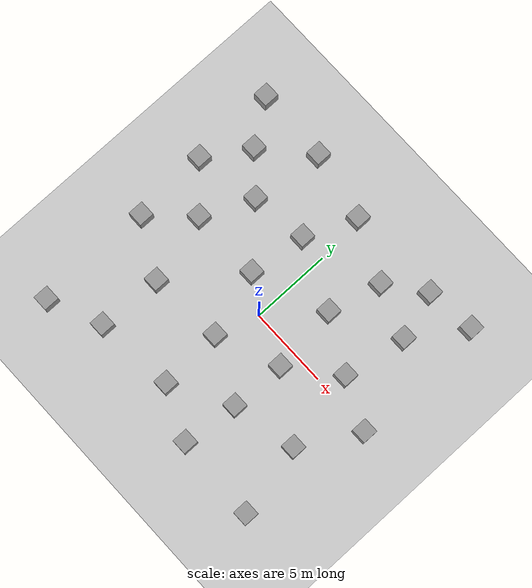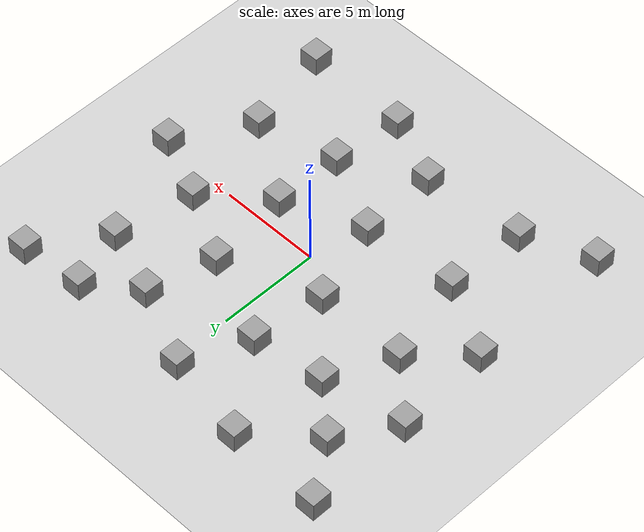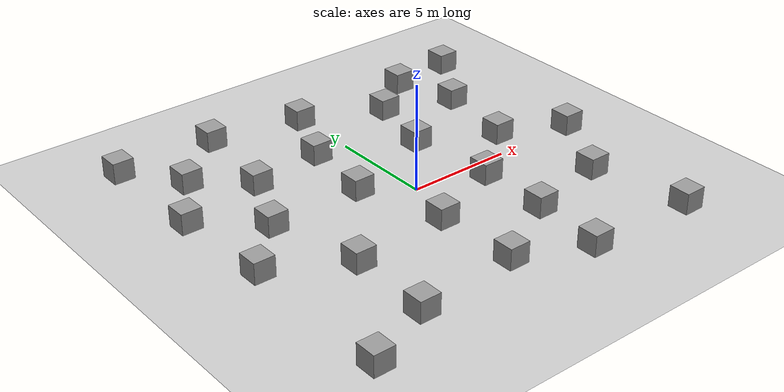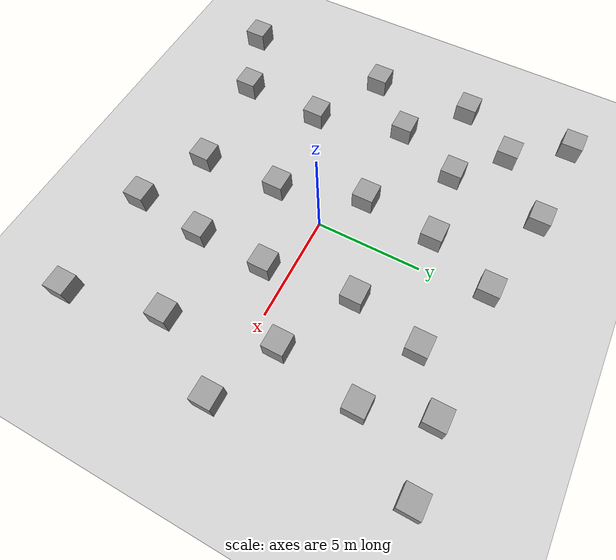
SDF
<sdf version="1.7">
 <world name="default">
  <light name="sun" type="directional">
   <pose>0 0 10 0 -0 0</pose>
   <diffuse>0.8 0.8 0.8 1</diffuse>
   <specular>0.2 0.2 0.2 1</specular>
   <attenuation>
    <range>1000</range>
    <constant>0.9</constant>
    <linear>0.01</linear>
    <quadratic>0.001</quadratic>
   </attenuation>
   <direction>-0.5 0.1 -0.9</direction>
   <spot><inner_angle>0</inner_angle><outer_angle>0</outer_angle><falloff>0</falloff></spot>
  </light>
  <model name="ground_plane">
   <static>1</static>
   <link name="link">
    <collision name="collision">
     <geometry><plane><normal>0 0 1</normal><size>100 100</size></plane></geometry>
     <surface>
      <contact><collide_bitmask>65535</collide_bitmask></contact>
      <friction><ode><mu>100</mu><mu2>50</mu2></ode></friction>
     </surface>
    </collision>
    <visual name="visual">
     <cast_shadows>0</cast_shadows>
     <geometry><plane><normal>0 0 1</normal><size>100 100</size></plane></geometry>
     <material>
      <script><uri>file://media/materials/scripts/gazebo.material</uri><name>Gazebo/Grey</name></script>
     </material>
    </visual>
   </link>
  </model>
  <gravity>0 0 -9.8</gravity>
  <magnetic_field>6e-06 2.3e-05 -4.2e-05</magnetic_field>
  <atmosphere type="adiabatic"/>
  <physics type="ode">
   <max_step_size>0.001</max_step_size>
   <real_time_factor>1</real_time_factor>
   <real_time_update_rate>1000</real_time_update_rate>
  </physics>
  <scene><ambient>0.4 0.4 0.4 1</ambient><background>0.7 0.7 0.7 1</background><shadows>1</shadows></scene>
  <spherical_coordinates>
   <surface_model>EARTH_WGS84</surface_model>
   <latitude_deg>0</latitude_deg>
   <longitude_deg>0</longitude_deg>
   <elevation>0</elevation>
   <heading_deg>0</heading_deg>
  </spherical_coordinates>
  <model name="Simple_Rectangle_Env_10F">
   <link name="link_0">
    <inertial>
     <mass>1</mass>
     <inertia>
      <ixx>0.166667</ixx>
      <ixy>0</ixy>
      <ixz>0</ixz>
      <iyy>0.166667</iyy>
      <iyz>0</iyz>
      <izz>0.166667</izz>
     </inertia>
    </inertial>
    <pose>-1.68521 0.387679 0 0 -0 0</pose>
    <visual name="visual">
     <geometry><box><size>1 1 1</size></box></geometry>
     <material>
      <lighting>1</lighting>
      <script><uri>file://media/materials/scripts/gazebo.material</uri><name>Gazebo/Grey</name></script>
      <shader type="pixel"/>
     </material>
    </visual>
    <collision name="collision">
     <geometry><box><size>1 1 1</size></box></geometry>
     <surface>
      <friction>
       <ode><mu>1</mu><mu2>1</mu2><fdir1>0 0 0</fdir1><slip1>0</slip1><slip2>0</slip2></ode>
       <torsional>
        <coefficient>1</coefficient>
        <patch_radius>0</patch_radius>
        <surface_radius>0</surface_radius>
        <use_patch_radius>1</use_patch_radius>
        <ode><slip>0</slip></ode>
       </torsional>
      </friction>
      <bounce><restitution_coefficient>0</restitution_coefficient><threshold>1e+06</threshold></bounce>
      <contact>
       <collide_without_contact>0</collide_without_contact>
       <collide_without_contact_bitmask>1</collide_without_contact_bitmask>
       <collide_bitmask>1</collide_bitmask>
       <ode>
        <soft_cfm>0</soft_cfm>
        <soft_erp>0.2</soft_erp>
        <kp>1e+13</kp>
        <kd>1</kd>
        <max_vel>0.01</max_vel>
        <min_depth>0</min_depth>
       </ode>
       <bullet>
        <split_impulse>1</split_impulse>
        <split_impulse_penetration_threshold>-0.01</split_impulse_penetration_threshold>
        <soft_cfm>0</soft_cfm>
        <soft_erp>0.2</soft_erp>
        <kp>1e+13</kp>
        <kd>1</kd>
       </bullet>
      </contact>
     </surface>
    </collision>
   </link>
   <link name="link_1">
    <inertial>
     <mass>1</mass>
     <inertia>
      <ixx>0.166667</ixx>
      <ixy>0</ixy>
      <ixz>0</ixz>
      <iyy>0.166667</iyy>
      <iyz>0</iyz>
      <izz>0.166667</izz>
     </inertia>
    </inertial>
    <pose>-0.395431 -3.63797 0 0 -0 0</pose>
    <visual name="visual">
     <geometry><box><size>1 1 1</size></box></geometry>
     <material>
      <lighting>1</lighting>
      <script><uri>file://media/materials/scripts/gazebo.material</uri><name>Gazebo/Grey</name></script>
      <shader type="pixel"/>
     </material>
    </visual>
    <collision name="collision">
     <geometry><box><size>1 1 1</size></box></geometry>
     <surface>
      <friction>
       <ode><mu>1</mu><mu2>1</mu2><fdir1>0 0 0</fdir1><slip1>0</slip1><slip2>0</slip2></ode>
       <torsional>
        <coefficient>1</coefficient>
        <patch_radius>0</patch_radius>
        <surface_radius>0</surface_radius>
        <use_patch_radius>1</use_patch_radius>
        <ode><slip>0</slip></ode>
       </torsional>
      </friction>
      <bounce><restitution_coefficient>0</restitution_coefficient><threshold>1e+06</threshold></bounce>
      <contact>
       <collide_without_contact>0</collide_without_contact>
       <collide_without_contact_bitmask>1</collide_without_contact_bitmask>
       <collide_bitmask>1</collide_bitmask>
       <ode>
        <soft_cfm>0</soft_cfm>
        <soft_erp>0.2</soft_erp>
        <kp>1e+13</kp>
        <kd>1</kd>
        <max_vel>0.01</max_vel>
        <min_depth>0</min_depth>
       </ode>
       <bullet>
        <split_impulse>1</split_impulse>
        <split_impulse_penetration_threshold>-0.01</split_impulse_penetration_threshold>
        <soft_cfm>0</soft_cfm>
        <soft_erp>0.2</soft_erp>
        <kp>1e+13</kp>
        <kd>1</kd>
       </bullet>
      </contact>
     </surface>
    </collision>
   </link>
   <link name="link_11">
    <inertial>
     <mass>1</mass>
     <inertia>
      <ixx>0.166667</ixx>
      <ixy>0</ixy>
      <ixz>0</ixz>
      <iyy>0.166667</iyy>
      <iyz>0</iyz>
      <izz>0.166667</izz>
     </inertia>
    </inertial>
    <pose>-6.17343 0.339996 0 0 -0 0</pose>
    <visual name="visual">
     <geometry><box><size>1 1 1</size></box></geometry>
     <material>
      <lighting>1</lighting>
      <script><uri>file://media/materials/scripts/gazebo.material</uri><name>Gazebo/Grey</name></script>
      <shader type="pixel"/>
     </material>
    </visual>
    <collision name="collision">
     <geometry><box><size>1 1 1</size></box></geometry>
     <surface>
      <friction>
       <ode><mu>1</mu><mu2>1</mu2><fdir1>0 0 0</fdir1><slip1>0</slip1><slip2>0</slip2></ode>
       <torsional>
        <coefficient>1</coefficient>
        <patch_radius>0</patch_radius>
        <surface_radius>0</surface_radius>
        <use_patch_radius>1</use_patch_radius>
        <ode><slip>0</slip></ode>
       </torsional>
      </friction>
      <bounce><restitution_coefficient>0</restitution_coefficient><threshold>1e+06</threshold></bounce>
      <contact>
       <collide_without_contact>0</collide_without_contact>
       <collide_without_contact_bitmask>1</collide_without_contact_bitmask>
       <collide_bitmask>1</collide_bitmask>
       <ode>
        <soft_cfm>0</soft_cfm>
        <soft_erp>0.2</soft_erp>
        <kp>1e+13</kp>
        <kd>1</kd>
        <max_vel>0.01</max_vel>
        <min_depth>0</min_depth>
       </ode>
       <bullet>
        <split_impulse>1</split_impulse>
        <split_impulse_penetration_threshold>-0.01</split_impulse_penetration_threshold>
        <soft_cfm>0</soft_cfm>
        <soft_erp>0.2</soft_erp>
        <kp>1e+13</kp>
        <kd>1</kd>
       </bullet>
      </contact>
     </surface>
    </collision>
   </link>
   <link name="link_13">
    <inertial>
     <mass>1</mass>
     <inertia>
      <ixx>0.166667</ixx>
      <ixy>0</ixy>
      <ixz>0</ixz>
      <iyy>0.166667</iyy>
      <iyz>0</iyz>
      <izz>0.166667</izz>
     </inertia>
    </inertial>
    <pose>0.104391 7.11502 0 0 -0 0</pose>
    <visual name="visual">
     <geometry><box><size>1 1 1</size></box></geometry>
     <material>
      <lighting>1</lighting>
      <script><uri>file://media/materials/scripts/gazebo.material</uri><name>Gazebo/Grey</name></script>
      <shader type="pixel"/>
     </material>
    </visual>
    <collision name="collision">
     <geometry><box><size>1 1 1</size></box></geometry>
     <surface>
      <friction>
       <ode><mu>1</mu><mu2>1</mu2><fdir1>0 0 0</fdir1><slip1>0</slip1><slip2>0</slip2></ode>
       <torsional>
        <coefficient>1</coefficient>
        <patch_radius>0</patch_radius>
        <surface_radius>0</surface_radius>
        <use_patch_radius>1</use_patch_radius>
        <ode><slip>0</slip></ode>
       </torsional>
      </friction>
      <bounce><restitution_coefficient>0</restitution_coefficient><threshold>1e+06</threshold></bounce>
      <contact>
       <collide_without_contact>0</collide_without_contact>
       <collide_without_contact_bitmask>1</collide_without_contact_bitmask>
       <collide_bitmask>1</collide_bitmask>
       <ode>
        <soft_cfm>0</soft_cfm>
        <soft_erp>0.2</soft_erp>
        <kp>1e+13</kp>
        <kd>1</kd>
        <max_vel>0.01</max_vel>
        <min_depth>0</min_depth>
       </ode>
       <bullet>
        <split_impulse>1</split_impulse>
        <split_impulse_penetration_threshold>-0.01</split_impulse_penetration_threshold>
        <soft_cfm>0</soft_cfm>
        <soft_erp>0.2</soft_erp>
        <kp>1e+13</kp>
        <kd>1</kd>
       </bullet>
      </contact>
     </surface>
    </collision>
   </link>
   <link name="link_14">
    <inertial>
     <mass>1</mass>
     <inertia>
      <ixx>0.166667</ixx>
      <ixy>0</ixy>
      <ixz>0</ixz>
      <iyy>0.166667</iyy>
      <iyz>0</iyz>
      <izz>0.166667</izz>
     </inertia>
    </inertial>
    <pose>7.04503 4.23161 0 0 -0 0</pose>
    <visual name="visual">
     <geometry><box><size>1 1 1</size></box></geometry>
     <material>
      <lighting>1</lighting>
      <script><uri>file://media/materials/scripts/gazebo.material</uri><name>Gazebo/Grey</name></script>
      <shader type="pixel"/>
     </material>
    </visual>
    <collision name="collision">
     <geometry><box><size>1 1 1</size></box></geometry>
     <surface>
      <friction>
       <ode><mu>1</mu><mu2>1</mu2><fdir1>0 0 0</fdir1><slip1>0</slip1><slip2>0</slip2></ode>
       <torsional>
        <coefficient>1</coefficient>
        <patch_radius>0</patch_radius>
        <surface_radius>0</surface_radius>
        <use_patch_radius>1</use_patch_radius>
        <ode><slip>0</slip></ode>
       </torsional>
      </friction>
      <bounce><restitution_coefficient>0</restitution_coefficient><threshold>1e+06</threshold></bounce>
      <contact>
       <collide_without_contact>0</collide_without_contact>
       <collide_without_contact_bitmask>1</collide_without_contact_bitmask>
       <collide_bitmask>1</collide_bitmask>
       <ode>
        <soft_cfm>0</soft_cfm>
        <soft_erp>0.2</soft_erp>
        <kp>1e+13</kp>
        <kd>1</kd>
        <max_vel>0.01</max_vel>
        <min_depth>0</min_depth>
       </ode>
       <bullet>
        <split_impulse>1</split_impulse>
        <split_impulse_penetration_threshold>-0.01</split_impulse_penetration_threshold>
        <soft_cfm>0</soft_cfm>
        <soft_erp>0.2</soft_erp>
        <kp>1e+13</kp>
        <kd>1</kd>
       </bullet>
      </contact>
     </surface>
    </collision>
   </link>
   <link name="link_16">
    <inertial>
     <mass>1</mass>
     <inertia>
      <ixx>0.166667</ixx>
      <ixy>0</ixy>
      <ixz>0</ixz>
      <iyy>0.166667</iyy>
      <iyz>0</iyz>
      <izz>0.166667</izz>
     </inertia>
    </inertial>
    <pose>-7.05272 5.47346 0 0 -0 0</pose>
    <visual name="visual">
     <geometry><box><size>1 1 1</size></box></geometry>
     <material>
      <lighting>1</lighting>
      <script><uri>file://media/materials/scripts/gazebo.material</uri><name>Gazebo/Grey</name></script>
      <shader type="pixel"/>
     </material>
    </visual>
    <collision name="collision">
     <geometry><box><size>1 1 1</size></box></geometry>
     <surface>
      <friction>
       <ode><mu>1</mu><mu2>1</mu2><fdir1>0 0 0</fdir1><slip1>0</slip1><slip2>0</slip2></ode>
       <torsional>
        <coefficient>1</coefficient>
        <patch_radius>0</patch_radius>
        <surface_radius>0</surface_radius>
        <use_patch_radius>1</use_patch_radius>
        <ode><slip>0</slip></ode>
       </torsional>
      </friction>
      <bounce><restitution_coefficient>0</restitution_coefficient><threshold>1e+06</threshold></bounce>
      <contact>
       <collide_without_contact>0</collide_without_contact>
       <collide_without_contact_bitmask>1</collide_without_contact_bitmask>
       <collide_bitmask>1</collide_bitmask>
       <ode>
        <soft_cfm>0</soft_cfm>
        <soft_erp>0.2</soft_erp>
        <kp>1e+13</kp>
        <kd>1</kd>
        <max_vel>0.01</max_vel>
        <min_depth>0</min_depth>
       </ode>
       <bullet>
        <split_impulse>1</split_impulse>
        <split_impulse_penetration_threshold>-0.01</split_impulse_penetration_threshold>
        <soft_cfm>0</soft_cfm>
        <soft_erp>0.2</soft_erp>
        <kp>1e+13</kp>
        <kd>1</kd>
       </bullet>
      </contact>
     </surface>
    </collision>
   </link>
   <link name="link_18">
    <inertial>
     <mass>1</mass>
     <inertia>
      <ixx>0.166667</ixx>
      <ixy>0</ixy>
      <ixz>0</ixz>
      <iyy>0.166667</iyy>
      <iyz>0</iyz>
      <izz>0.166667</izz>
     </inertia>
    </inertial>
    <pose>-0.226835 -7.56523 0 0 -0 0</pose>
    <visual name="visual">
     <geometry><box><size>1 1 1</size></box></geometry>
     <material>
      <lighting>1</lighting>
      <script><uri>file://media/materials/scripts/gazebo.material</uri><name>Gazebo/Grey</name></script>
      <shader type="pixel"/>
     </material>
    </visual>
    <collision name="collision">
     <geometry><box><size>1 1 1</size></box></geometry>
     <surface>
      <friction>
       <ode><mu>1</mu><mu2>1</mu2><fdir1>0 0 0</fdir1><slip1>0</slip1><slip2>0</slip2></ode>
       <torsional>
        <coefficient>1</coefficient>
        <patch_radius>0</patch_radius>
        <surface_radius>0</surface_radius>
        <use_patch_radius>1</use_patch_radius>
        <ode><slip>0</slip></ode>
       </torsional>
      </friction>
      <bounce><restitution_coefficient>0</restitution_coefficient><threshold>1e+06</threshold></bounce>
      <contact>
       <collide_without_contact>0</collide_without_contact>
       <collide_without_contact_bitmask>1</collide_without_contact_bitmask>
       <collide_bitmask>1</collide_bitmask>
       <ode>
        <soft_cfm>0</soft_cfm>
        <soft_erp>0.2</soft_erp>
        <kp>1e+13</kp>
        <kd>1</kd>
        <max_vel>0.01</max_vel>
        <min_depth>0</min_depth>
       </ode>
       <bullet>
        <split_impulse>1</split_impulse>
        <split_impulse_penetration_threshold>-0.01</split_impulse_penetration_threshold>
        <soft_cfm>0</soft_cfm>
        <soft_erp>0.2</soft_erp>
        <kp>1e+13</kp>
        <kd>1</kd>
       </bullet>
      </contact>
     </surface>
    </collision>
   </link>
   <link name="link_19">
    <inertial>
     <mass>1</mass>
     <inertia>
      <ixx>0.166667</ixx>
      <ixy>0</ixy>
      <ixz>0</ixz>
      <iyy>0.166667</iyy>
      <iyz>0</iyz>
      <izz>0.166667</izz>
     </inertia>
    </inertial>
    <pose>6.12582 7.15925 0 0 -0 0</pose>
    <visual name="visual">
     <geometry><box><size>1 1 1</size></box></geometry>
     <material>
      <lighting>1</lighting>
      <script><uri>file://media/materials/scripts/gazebo.material</uri><name>Gazebo/Grey</name></script>
      <shader type="pixel"/>
     </material>
    </visual>
    <collision name="collision">
     <geometry><box><size>1 1 1</size></box></geometry>
     <surface>
      <friction>
       <ode><mu>1</mu><mu2>1</mu2><fdir1>0 0 0</fdir1><slip1>0</slip1><slip2>0</slip2></ode>
       <torsional>
        <coefficient>1</coefficient>
        <patch_radius>0</patch_radius>
        <surface_radius>0</surface_radius>
        <use_patch_radius>1</use_patch_radius>
        <ode><slip>0</slip></ode>
       </torsional>
      </friction>
      <bounce><restitution_coefficient>0</restitution_coefficient><threshold>1e+06</threshold></bounce>
      <contact>
       <collide_without_contact>0</collide_without_contact>
       <collide_without_contact_bitmask>1</collide_without_contact_bitmask>
       <collide_bitmask>1</collide_bitmask>
       <ode>
        <soft_cfm>0</soft_cfm>
        <soft_erp>0.2</soft_erp>
        <kp>1e+13</kp>
        <kd>1</kd>
        <max_vel>0.01</max_vel>
        <min_depth>0</min_depth>
       </ode>
       <bullet>
        <split_impulse>1</split_impulse>
        <split_impulse_penetration_threshold>-0.01</split_impulse_penetration_threshold>
        <soft_cfm>0</soft_cfm>
        <soft_erp>0.2</soft_erp>
        <kp>1e+13</kp>
        <kd>1</kd>
       </bullet>
      </contact>
     </surface>
    </collision>
   </link>
   <link name="link_2">
    <inertial>
     <mass>1</mass>
     <inertia>
      <ixx>0.166667</ixx>
      <ixy>0</ixy>
      <ixz>0</ixz>
      <iyy>0.166667</iyy>
      <iyz>0</iyz>
      <izz>0.166667</izz>
     </inertia>
    </inertial>
    <pose>2.99444 2.10954 0 0 -0 0</pose>
    <visual name="visual">
     <geometry><box><size>1 1 1</size></box></geometry>
     <material>
      <lighting>1</lighting>
      <script><uri>file://media/materials/scripts/gazebo.material</uri><name>Gazebo/Grey</name></script>
      <shader type="pixel"/>
     </material>
    </visual>
    <collision name="collision">
     <geometry><box><size>1 1 1</size></box></geometry>
     <surface>
      <friction>
       <ode><mu>1</mu><mu2>1</mu2><fdir1>0 0 0</fdir1><slip1>0</slip1><slip2>0</slip2></ode>
       <torsional>
        <coefficient>1</coefficient>
        <patch_radius>0</patch_radius>
        <surface_radius>0</surface_radius>
        <use_patch_radius>1</use_patch_radius>
        <ode><slip>0</slip></ode>
       </torsional>
      </friction>
      <bounce><restitution_coefficient>0</restitution_coefficient><threshold>1e+06</threshold></bounce>
      <contact>
       <collide_without_contact>0</collide_without_contact>
       <collide_without_contact_bitmask>1</collide_without_contact_bitmask>
       <collide_bitmask>1</collide_bitmask>
       <ode>
        <soft_cfm>0</soft_cfm>
        <soft_erp>0.2</soft_erp>
        <kp>1e+13</kp>
        <kd>1</kd>
        <max_vel>0.01</max_vel>
        <min_depth>0</min_depth>
       </ode>
       <bullet>
        <split_impulse>1</split_impulse>
        <split_impulse_penetration_threshold>-0.01</split_impulse_penetration_threshold>
        <soft_cfm>0</soft_cfm>
        <soft_erp>0.2</soft_erp>
        <kp>1e+13</kp>
        <kd>1</kd>
       </bullet>
      </contact>
     </surface>
    </collision>
   </link>
   <link name="link_21">
    <inertial>
     <mass>1</mass>
     <inertia>
      <ixx>0.166667</ixx>
      <ixy>0</ixy>
      <ixz>0</ixz>
      <iyy>0.166667</iyy>
      <iyz>0</iyz>
      <izz>0.166667</izz>
     </inertia>
    </inertial>
    <pose>-8.49948 -2.08082 0 0 -0 0</pose>
    <visual name="visual">
     <geometry><box><size>1 1 1</size></box></geometry>
     <material>
      <lighting>1</lighting>
      <script><uri>file://media/materials/scripts/gazebo.material</uri><name>Gazebo/Grey</name></script>
      <shader type="pixel"/>
     </material>
    </visual>
    <collision name="collision">
     <geometry><box><size>1 1 1</size></box></geometry>
     <surface>
      <friction>
       <ode><mu>1</mu><mu2>1</mu2><fdir1>0 0 0</fdir1><slip1>0</slip1><slip2>0</slip2></ode>
       <torsional>
        <coefficient>1</coefficient>
        <patch_radius>0</patch_radius>
        <surface_radius>0</surface_radius>
        <use_patch_radius>1</use_patch_radius>
        <ode><slip>0</slip></ode>
       </torsional>
      </friction>
      <bounce><restitution_coefficient>0</restitution_coefficient><threshold>1e+06</threshold></bounce>
      <contact>
       <collide_without_contact>0</collide_without_contact>
       <collide_without_contact_bitmask>1</collide_without_contact_bitmask>
       <collide_bitmask>1</collide_bitmask>
       <ode>
        <soft_cfm>0</soft_cfm>
        <soft_erp>0.2</soft_erp>
        <kp>1e+13</kp>
        <kd>1</kd>
        <max_vel>0.01</max_vel>
        <min_depth>0</min_depth>
       </ode>
       <bullet>
        <split_impulse>1</split_impulse>
        <split_impulse_penetration_threshold>-0.01</split_impulse_penetration_threshold>
        <soft_cfm>0</soft_cfm>
        <soft_erp>0.2</soft_erp>
        <kp>1e+13</kp>
        <kd>1</kd>
       </bullet>
      </contact>
     </surface>
    </collision>
   </link>
   <link name="link_22">
    <inertial>
     <mass>1</mass>
     <inertia>
      <ixx>0.166667</ixx>
      <ixy>0</ixy>
      <ixz>0</ixz>
      <iyy>0.166667</iyy>
      <iyz>0</iyz>
      <izz>0.166667</izz>
     </inertia>
    </inertial>
    <pose>-5.19142 -8.01028 0 0 -0 0</pose>
    <visual name="visual">
     <geometry><box><size>1 1 1</size></box></geometry>
     <material>
      <lighting>1</lighting>
      <script><uri>file://media/materials/scripts/gazebo.material</uri><name>Gazebo/Grey</name></script>
      <shader type="pixel"/>
     </material>
    </visual>
    <collision name="collision">
     <geometry><box><size>1 1 1</size></box></geometry>
     <surface>
      <friction>
       <ode><mu>1</mu><mu2>1</mu2><fdir1>0 0 0</fdir1><slip1>0</slip1><slip2>0</slip2></ode>
       <torsional>
        <coefficient>1</coefficient>
        <patch_radius>0</patch_radius>
        <surface_radius>0</surface_radius>
        <use_patch_radius>1</use_patch_radius>
        <ode><slip>0</slip></ode>
       </torsional>
      </friction>
      <bounce><restitution_coefficient>0</restitution_coefficient><threshold>1e+06</threshold></bounce>
      <contact>
       <collide_without_contact>0</collide_without_contact>
       <collide_without_contact_bitmask>1</collide_without_contact_bitmask>
       <collide_bitmask>1</collide_bitmask>
       <ode>
        <soft_cfm>0</soft_cfm>
        <soft_erp>0.2</soft_erp>
        <kp>1e+13</kp>
        <kd>1</kd>
        <max_vel>0.01</max_vel>
        <min_depth>0</min_depth>
       </ode>
       <bullet>
        <split_impulse>1</split_impulse>
        <split_impulse_penetration_threshold>-0.01</split_impulse_penetration_threshold>
        <soft_cfm>0</soft_cfm>
        <soft_erp>0.2</soft_erp>
        <kp>1e+13</kp>
        <kd>1</kd>
       </bullet>
      </contact>
     </surface>
    </collision>
   </link>
   <link name="link_24">
    <inertial>
     <mass>1</mass>
     <inertia>
      <ixx>0.166667</ixx>
      <ixy>0</ixy>
      <ixz>0</ixz>
      <iyy>0.166667</iyy>
      <iyz>0</iyz>
      <izz>0.166667</izz>
     </inertia>
    </inertial>
    <pose>3.02157 -9.0024 0 0 -0 0</pose>
    <visual name="visual">
     <geometry><box><size>1 1 1</size></box></geometry>
     <material>
      <lighting>1</lighting>
      <script><uri>file://media/materials/scripts/gazebo.material</uri><name>Gazebo/Grey</name></script>
      <shader type="pixel"/>
     </material>
    </visual>
    <collision name="collision">
     <geometry><box><size>1 1 1</size></box></geometry>
     <surface>
      <friction>
       <ode><mu>1</mu><mu2>1</mu2><fdir1>0 0 0</fdir1><slip1>0</slip1><slip2>0</slip2></ode>
       <torsional>
        <coefficient>1</coefficient>
        <patch_radius>0</patch_radius>
        <surface_radius>0</surface_radius>
        <use_patch_radius>1</use_patch_radius>
        <ode><slip>0</slip></ode>
       </torsional>
      </friction>
      <bounce><restitution_coefficient>0</restitution_coefficient><threshold>1e+06</threshold></bounce>
      <contact>
       <collide_without_contact>0</collide_without_contact>
       <collide_without_contact_bitmask>1</collide_without_contact_bitmask>
       <collide_bitmask>1</collide_bitmask>
       <ode>
        <soft_cfm>0</soft_cfm>
        <soft_erp>0.2</soft_erp>
        <kp>1e+13</kp>
        <kd>1</kd>
        <max_vel>0.01</max_vel>
        <min_depth>0</min_depth>
       </ode>
       <bullet>
        <split_impulse>1</split_impulse>
        <split_impulse_penetration_threshold>-0.01</split_impulse_penetration_threshold>
        <soft_cfm>0</soft_cfm>
        <soft_erp>0.2</soft_erp>
        <kp>1e+13</kp>
        <kd>1</kd>
       </bullet>
      </contact>
     </surface>
    </collision>
   </link>
   <link name="link_26">
    <inertial>
     <mass>1</mass>
     <inertia>
      <ixx>0.166667</ixx>
      <ixy>0</ixy>
      <ixz>0</ixz>
      <iyy>0.166667</iyy>
      <iyz>0</iyz>
      <izz>0.166667</izz>
     </inertia>
    </inertial>
    <pose>-8.77958 2.71861 0 0 -0 0</pose>
    <visual name="visual">
     <geometry><box><size>1 1 1</size></box></geometry>
     <material>
      <lighting>1</lighting>
      <script><uri>file://media/materials/scripts/gazebo.material</uri><name>Gazebo/Grey</name></script>
      <shader type="pixel"/>
     </material>
    </visual>
    <collision name="collision">
     <geometry><box><size>1 1 1</size></box></geometry>
     <surface>
      <friction>
       <ode><mu>1</mu><mu2>1</mu2><fdir1>0 0 0</fdir1><slip1>0</slip1><slip2>0</slip2></ode>
       <torsional>
        <coefficient>1</coefficient>
        <patch_radius>0</patch_radius>
        <surface_radius>0</surface_radius>
        <use_patch_radius>1</use_patch_radius>
        <ode><slip>0</slip></ode>
       </torsional>
      </friction>
      <bounce><restitution_coefficient>0</restitution_coefficient><threshold>1e+06</threshold></bounce>
      <contact>
       <collide_without_contact>0</collide_without_contact>
       <collide_without_contact_bitmask>1</collide_without_contact_bitmask>
       <collide_bitmask>1</collide_bitmask>
       <ode>
        <soft_cfm>0</soft_cfm>
        <soft_erp>0.2</soft_erp>
        <kp>1e+13</kp>
        <kd>1</kd>
        <max_vel>0.01</max_vel>
        <min_depth>0</min_depth>
       </ode>
       <bullet>
        <split_impulse>1</split_impulse>
        <split_impulse_penetration_threshold>-0.01</split_impulse_penetration_threshold>
        <soft_cfm>0</soft_cfm>
        <soft_erp>0.2</soft_erp>
        <kp>1e+13</kp>
        <kd>1</kd>
       </bullet>
      </contact>
     </surface>
    </collision>
   </link>
   <link name="link_27">
    <inertial>
     <mass>1</mass>
     <inertia>
      <ixx>0.166667</ixx>
      <ixy>0</ixy>
      <ixz>0</ixz>
      <iyy>0.166667</iyy>
      <iyz>0</iyz>
      <izz>0.166667</izz>
     </inertia>
    </inertial>
    <pose>9.22176 7.48233 0 0 -0 0</pose>
    <visual name="visual">
     <geometry><box><size>1 1 1</size></box></geometry>
     <material>
      <lighting>1</lighting>
      <script><uri>file://media/materials/scripts/gazebo.material</uri><name>Gazebo/Grey</name></script>
      <shader type="pixel"/>
     </material>
    </visual>
    <collision name="collision">
     <geometry><box><size>1 1 1</size></box></geometry>
     <surface>
      <friction>
       <ode><mu>1</mu><mu2>1</mu2><fdir1>0 0 0</fdir1><slip1>0</slip1><slip2>0</slip2></ode>
       <torsional>
        <coefficient>1</coefficient>
        <patch_radius>0</patch_radius>
        <surface_radius>0</surface_radius>
        <use_patch_radius>1</use_patch_radius>
        <ode><slip>0</slip></ode>
       </torsional>
      </friction>
      <bounce><restitution_coefficient>0</restitution_coefficient><threshold>1e+06</threshold></bounce>
      <contact>
       <collide_without_contact>0</collide_without_contact>
       <collide_without_contact_bitmask>1</collide_without_contact_bitmask>
       <collide_bitmask>1</collide_bitmask>
       <ode>
        <soft_cfm>0</soft_cfm>
        <soft_erp>0.2</soft_erp>
        <kp>1e+13</kp>
        <kd>1</kd>
        <max_vel>0.01</max_vel>
        <min_depth>0</min_depth>
       </ode>
       <bullet>
        <split_impulse>1</split_impulse>
        <split_impulse_penetration_threshold>-0.01</split_impulse_penetration_threshold>
        <soft_cfm>0</soft_cfm>
        <soft_erp>0.2</soft_erp>
        <kp>1e+13</kp>
        <kd>1</kd>
       </bullet>
      </contact>
     </surface>
    </collision>
   </link>
   <link name="link_28">
    <inertial>
     <mass>1</mass>
     <inertia>
      <ixx>0.166667</ixx>
      <ixy>0</ixy>
      <ixz>0</ixz>
      <iyy>0.166667</iyy>
      <iyz>0</iyz>
      <izz>0.166667</izz>
     </inertia>
    </inertial>
    <pose>-8.8895 8.09252 0 0 -0 0</pose>
    <visual name="visual">
     <geometry><box><size>1 1 1</size></box></geometry>
     <material>
      <lighting>1</lighting>
      <script><uri>file://media/materials/scripts/gazebo.material</uri><name>Gazebo/Grey</name></script>
      <shader type="pixel"/>
     </material>
    </visual>
    <collision name="collision">
     <geometry><box><size>1 1 1</size></box></geometry>
     <surface>
      <friction>
       <ode><mu>1</mu><mu2>1</mu2><fdir1>0 0 0</fdir1><slip1>0</slip1><slip2>0</slip2></ode>
       <torsional>
        <coefficient>1</coefficient>
        <patch_radius>0</patch_radius>
        <surface_radius>0</surface_radius>
        <use_patch_radius>1</use_patch_radius>
        <ode><slip>0</slip></ode>
       </torsional>
      </friction>
      <bounce><restitution_coefficient>0</restitution_coefficient><threshold>1e+06</threshold></bounce>
      <contact>
       <collide_without_contact>0</collide_without_contact>
       <collide_without_contact_bitmask>1</collide_without_contact_bitmask>
       <collide_bitmask>1</collide_bitmask>
       <ode>
        <soft_cfm>0</soft_cfm>
        <soft_erp>0.2</soft_erp>
        <kp>1e+13</kp>
        <kd>1</kd>
        <max_vel>0.01</max_vel>
        <min_depth>0</min_depth>
       </ode>
       <bullet>
        <split_impulse>1</split_impulse>
        <split_impulse_penetration_threshold>-0.01</split_impulse_penetration_threshold>
        <soft_cfm>0</soft_cfm>
        <soft_erp>0.2</soft_erp>
        <kp>1e+13</kp>
        <kd>1</kd>
       </bullet>
      </contact>
     </surface>
    </collision>
   </link>
   <link name="link_29">
    <inertial>
     <mass>1</mass>
     <inertia>
      <ixx>0.166667</ixx>
      <ixy>0</ixy>
      <ixz>0</ixz>
      <iyy>0.166667</iyy>
      <iyz>0</iyz>
      <izz>0.166667</izz>
     </inertia>
    </inertial>
    <pose>-8.48073 -9.40022 0 0 -0 0</pose>
    <visual name="visual">
     <geometry><box><size>1 1 1</size></box></geometry>
     <material>
      <lighting>1</lighting>
      <script><uri>file://media/materials/scripts/gazebo.material</uri><name>Gazebo/Grey</name></script>
      <shader type="pixel"/>
     </material>
    </visual>
    <collision name="collision">
     <geometry><box><size>1 1 1</size></box></geometry>
     <surface>
      <friction>
       <ode><mu>1</mu><mu2>1</mu2><fdir1>0 0 0</fdir1><slip1>0</slip1><slip2>0</slip2></ode>
       <torsional>
        <coefficient>1</coefficient>
        <patch_radius>0</patch_radius>
        <surface_radius>0</surface_radius>
        <use_patch_radius>1</use_patch_radius>
        <ode><slip>0</slip></ode>
       </torsional>
      </friction>
      <bounce><restitution_coefficient>0</restitution_coefficient><threshold>1e+06</threshold></bounce>
      <contact>
       <collide_without_contact>0</collide_without_contact>
       <collide_without_contact_bitmask>1</collide_without_contact_bitmask>
       <collide_bitmask>1</collide_bitmask>
       <ode>
        <soft_cfm>0</soft_cfm>
        <soft_erp>0.2</soft_erp>
        <kp>1e+13</kp>
        <kd>1</kd>
        <max_vel>0.01</max_vel>
        <min_depth>0</min_depth>
       </ode>
       <bullet>
        <split_impulse>1</split_impulse>
        <split_impulse_penetration_threshold>-0.01</split_impulse_penetration_threshold>
        <soft_cfm>0</soft_cfm>
        <soft_erp>0.2</soft_erp>
        <kp>1e+13</kp>
        <kd>1</kd>
       </bullet>
      </contact>
     </surface>
    </collision>
   </link>
   <link name="link_3">
    <inertial>
     <mass>1</mass>
     <inertia>
      <ixx>0.166667</ixx>
      <ixy>0</ixy>
      <ixz>0</ixz>
      <iyy>0.166667</iyy>
      <iyz>0</iyz>
      <izz>0.166667</izz>
     </inertia>
    </inertial>
    <pose>-1.24053 3.96865 0 0 -0 0</pose>
    <visual name="visual">
     <geometry><box><size>1 1 1</size></box></geometry>
     <material>
      <lighting>1</lighting>
      <script><uri>file://media/materials/scripts/gazebo.material</uri><name>Gazebo/Grey</name></script>
      <shader type="pixel"/>
     </material>
    </visual>
    <collision name="collision">
     <geometry><box><size>1 1 1</size></box></geometry>
     <surface>
      <friction>
       <ode><mu>1</mu><mu2>1</mu2><fdir1>0 0 0</fdir1><slip1>0</slip1><slip2>0</slip2></ode>
       <torsional>
        <coefficient>1</coefficient>
        <patch_radius>0</patch_radius>
        <surface_radius>0</surface_radius>
        <use_patch_radius>1</use_patch_radius>
        <ode><slip>0</slip></ode>
       </torsional>
      </friction>
      <bounce><restitution_coefficient>0</restitution_coefficient><threshold>1e+06</threshold></bounce>
      <contact>
       <collide_without_contact>0</collide_without_contact>
       <collide_without_contact_bitmask>1</collide_without_contact_bitmask>
       <collide_bitmask>1</collide_bitmask>
       <ode>
        <soft_cfm>0</soft_cfm>
        <soft_erp>0.2</soft_erp>
        <kp>1e+13</kp>
        <kd>1</kd>
        <max_vel>0.01</max_vel>
        <min_depth>0</min_depth>
       </ode>
       <bullet>
        <split_impulse>1</split_impulse>
        <split_impulse_penetration_threshold>-0.01</split_impulse_penetration_threshold>
        <soft_cfm>0</soft_cfm>
        <soft_erp>0.2</soft_erp>
        <kp>1e+13</kp>
        <kd>1</kd>
       </bullet>
      </contact>
     </surface>
    </collision>
   </link>
   <link name="link_30">
    <inertial>
     <mass>1</mass>
     <inertia>
      <ixx>0.166667</ixx>
      <ixy>0</ixy>
      <ixz>0</ixz>
      <iyy>0.166667</iyy>
      <iyz>0</iyz>
      <izz>0.166667</izz>
     </inertia>
    </inertial>
    <pose>8.30916 -9.18257 0 0 -0 0</pose>
    <visual name="visual">
     <geometry><box><size>1 1 1</size></box></geometry>
     <material>
      <lighting>1</lighting>
      <script><uri>file://media/materials/scripts/gazebo.material</uri><name>Gazebo/Grey</name></script>
      <shader type="pixel"/>
     </material>
    </visual>
    <collision name="collision">
     <geometry><box><size>1 1 1</size></box></geometry>
     <surface>
      <friction>
       <ode><mu>1</mu><mu2>1</mu2><fdir1>0 0 0</fdir1><slip1>0</slip1><slip2>0</slip2></ode>
       <torsional>
        <coefficient>1</coefficient>
        <patch_radius>0</patch_radius>
        <surface_radius>0</surface_radius>
        <use_patch_radius>1</use_patch_radius>
        <ode><slip>0</slip></ode>
       </torsional>
      </friction>
      <bounce><restitution_coefficient>0</restitution_coefficient><threshold>1e+06</threshold></bounce>
      <contact>
       <collide_without_contact>0</collide_without_contact>
       <collide_without_contact_bitmask>1</collide_without_contact_bitmask>
       <collide_bitmask>1</collide_bitmask>
       <ode>
        <soft_cfm>0</soft_cfm>
        <soft_erp>0.2</soft_erp>
        <kp>1e+13</kp>
        <kd>1</kd>
        <max_vel>0.01</max_vel>
        <min_depth>0</min_depth>
       </ode>
       <bullet>
        <split_impulse>1</split_impulse>
        <split_impulse_penetration_threshold>-0.01</split_impulse_penetration_threshold>
        <soft_cfm>0</soft_cfm>
        <soft_erp>0.2</soft_erp>
        <kp>1e+13</kp>
        <kd>1</kd>
       </bullet>
      </contact>
     </surface>
    </collision>
   </link>
   <link name="link_31">
    <inertial>
     <mass>1</mass>
     <inertia>
      <ixx>0.166667</ixx>
      <ixy>0</ixy>
      <ixz>0</ixz>
      <iyy>0.166667</iyy>
      <iyz>0</iyz>
      <izz>0.166667</izz>
     </inertia>
    </inertial>
    <pose>9.4288 -1.09975 0 0 -0 0</pose>
    <visual name="visual">
     <geometry><box><size>1 1 1</size></box></geometry>
     <material>
      <lighting>1</lighting>
      <script><uri>file://media/materials/scripts/gazebo.material</uri><name>Gazebo/Grey</name></script>
      <shader type="pixel"/>
     </material>
    </visual>
    <collision name="collision">
     <geometry><box><size>1 1 1</size></box></geometry>
     <surface>
      <friction>
       <ode><mu>1</mu><mu2>1</mu2><fdir1>0 0 0</fdir1><slip1>0</slip1><slip2>0</slip2></ode>
       <torsional>
        <coefficient>1</coefficient>
        <patch_radius>0</patch_radius>
        <surface_radius>0</surface_radius>
        <use_patch_radius>1</use_patch_radius>
        <ode><slip>0</slip></ode>
       </torsional>
      </friction>
      <bounce><restitution_coefficient>0</restitution_coefficient><threshold>1e+06</threshold></bounce>
      <contact>
       <collide_without_contact>0</collide_without_contact>
       <collide_without_contact_bitmask>1</collide_without_contact_bitmask>
       <collide_bitmask>1</collide_bitmask>
       <ode>
        <soft_cfm>0</soft_cfm>
        <soft_erp>0.2</soft_erp>
        <kp>1e+13</kp>
        <kd>1</kd>
        <max_vel>0.01</max_vel>
        <min_depth>0</min_depth>
       </ode>
       <bullet>
        <split_impulse>1</split_impulse>
        <split_impulse_penetration_threshold>-0.01</split_impulse_penetration_threshold>
        <soft_cfm>0</soft_cfm>
        <soft_erp>0.2</soft_erp>
        <kp>1e+13</kp>
        <kd>1</kd>
       </bullet>
      </contact>
     </surface>
    </collision>
   </link>
   <link name="link_33">
    <inertial>
     <mass>1</mass>
     <inertia>
      <ixx>0.166667</ixx>
      <ixy>0</ixy>
      <ixz>0</ixz>
      <iyy>0.166667</iyy>
      <iyz>0</iyz>
      <izz>0.166667</izz>
     </inertia>
    </inertial>
    <pose>-4.76566 3.49471 0 0 -0 0</pose>
    <visual name="visual">
     <geometry><box><size>1 1 1</size></box></geometry>
     <material>
      <lighting>1</lighting>
      <script><uri>file://media/materials/scripts/gazebo.material</uri><name>Gazebo/Grey</name></script>
      <shader type="pixel"/>
     </material>
    </visual>
    <collision name="collision">
     <geometry><box><size>1 1 1</size></box></geometry>
     <surface>
      <friction>
       <ode><mu>1</mu><mu2>1</mu2><fdir1>0 0 0</fdir1><slip1>0</slip1><slip2>0</slip2></ode>
       <torsional>
        <coefficient>1</coefficient>
        <patch_radius>0</patch_radius>
        <surface_radius>0</surface_radius>
        <use_patch_radius>1</use_patch_radius>
        <ode><slip>0</slip></ode>
       </torsional>
      </friction>
      <bounce><restitution_coefficient>0</restitution_coefficient><threshold>1e+06</threshold></bounce>
      <contact>
       <collide_without_contact>0</collide_without_contact>
       <collide_without_contact_bitmask>1</collide_without_contact_bitmask>
       <collide_bitmask>1</collide_bitmask>
       <ode>
        <soft_cfm>0</soft_cfm>
        <soft_erp>0.2</soft_erp>
        <kp>1e+13</kp>
        <kd>1</kd>
        <max_vel>0.01</max_vel>
        <min_depth>0</min_depth>
       </ode>
       <bullet>
        <split_impulse>1</split_impulse>
        <split_impulse_penetration_threshold>-0.01</split_impulse_penetration_threshold>
        <soft_cfm>0</soft_cfm>
        <soft_erp>0.2</soft_erp>
        <kp>1e+13</kp>
        <kd>1</kd>
       </bullet>
      </contact>
     </surface>
    </collision>
   </link>
   <link name="link_34">
    <inertial>
     <mass>1</mass>
     <inertia>
      <ixx>0.166667</ixx>
      <ixy>0</ixy>
      <ixz>0</ixz>
      <iyy>0.166667</iyy>
      <iyz>0</iyz>
      <izz>0.166667</izz>
     </inertia>
    </inertial>
    <pose>-4.21176 7.97425 0 0 -0 0</pose>
    <visual name="visual">
     <geometry><box><size>1 1 1</size></box></geometry>
     <material>
      <lighting>1</lighting>
      <script><uri>file://media/materials/scripts/gazebo.material</uri><name>Gazebo/Grey</name></script>
      <shader type="pixel"/>
     </material>
    </visual>
    <collision name="collision">
     <geometry><box><size>1 1 1</size></box></geometry>
     <surface>
      <friction>
       <ode><mu>1</mu><mu2>1</mu2><fdir1>0 0 0</fdir1><slip1>0</slip1><slip2>0</slip2></ode>
       <torsional>
        <coefficient>1</coefficient>
        <patch_radius>0</patch_radius>
        <surface_radius>0</surface_radius>
        <use_patch_radius>1</use_patch_radius>
        <ode><slip>0</slip></ode>
       </torsional>
      </friction>
      <bounce><restitution_coefficient>0</restitution_coefficient><threshold>1e+06</threshold></bounce>
      <contact>
       <collide_without_contact>0</collide_without_contact>
       <collide_without_contact_bitmask>1</collide_without_contact_bitmask>
       <collide_bitmask>1</collide_bitmask>
       <ode>
        <soft_cfm>0</soft_cfm>
        <soft_erp>0.2</soft_erp>
        <kp>1e+13</kp>
        <kd>1</kd>
        <max_vel>0.01</max_vel>
        <min_depth>0</min_depth>
       </ode>
       <bullet>
        <split_impulse>1</split_impulse>
        <split_impulse_penetration_threshold>-0.01</split_impulse_penetration_threshold>
        <soft_cfm>0</soft_cfm>
        <soft_erp>0.2</soft_erp>
        <kp>1e+13</kp>
        <kd>1</kd>
       </bullet>
      </contact>
     </surface>
    </collision>
   </link>
   <link name="link_35">
    <inertial>
     <mass>1</mass>
     <inertia>
      <ixx>0.166667</ixx>
      <ixy>0</ixy>
      <ixz>0</ixz>
      <iyy>0.166667</iyy>
      <iyz>0</iyz>
      <izz>0.166667</izz>
     </inertia>
    </inertial>
    <pose>-5.04127 -3.99561 0 0 -0 0</pose>
    <visual name="visual">
     <geometry><box><size>1 1 1</size></box></geometry>
     <material>
      <lighting>1</lighting>
      <script><uri>file://media/materials/scripts/gazebo.material</uri><name>Gazebo/Grey</name></script>
      <shader type="pixel"/>
     </material>
    </visual>
    <collision name="collision">
     <geometry><box><size>1 1 1</size></box></geometry>
     <surface>
      <friction>
       <ode><mu>1</mu><mu2>1</mu2><fdir1>0 0 0</fdir1><slip1>0</slip1><slip2>0</slip2></ode>
       <torsional>
        <coefficient>1</coefficient>
        <patch_radius>0</patch_radius>
        <surface_radius>0</surface_radius>
        <use_patch_radius>1</use_patch_radius>
        <ode><slip>0</slip></ode>
       </torsional>
      </friction>
      <bounce><restitution_coefficient>0</restitution_coefficient><threshold>1e+06</threshold></bounce>
      <contact>
       <collide_without_contact>0</collide_without_contact>
       <collide_without_contact_bitmask>1</collide_without_contact_bitmask>
       <collide_bitmask>1</collide_bitmask>
       <ode>
        <soft_cfm>0</soft_cfm>
        <soft_erp>0.2</soft_erp>
        <kp>1e+13</kp>
        <kd>1</kd>
        <max_vel>0.01</max_vel>
        <min_depth>0</min_depth>
       </ode>
       <bullet>
        <split_impulse>1</split_impulse>
        <split_impulse_penetration_threshold>-0.01</split_impulse_penetration_threshold>
        <soft_cfm>0</soft_cfm>
        <soft_erp>0.2</soft_erp>
        <kp>1e+13</kp>
        <kd>1</kd>
       </bullet>
      </contact>
     </surface>
    </collision>
   </link>
   <link name="link_36">
    <inertial>
     <mass>1</mass>
     <inertia>
      <ixx>0.166667</ixx>
      <ixy>0</ixy>
      <ixz>0</ixz>
      <iyy>0.166667</iyy>
      <iyz>0</iyz>
      <izz>0.166667</izz>
     </inertia>
    </inertial>
    <pose>3.37695 -5.53677 0 0 -0 0</pose>
    <visual name="visual">
     <geometry><box><size>1 1 1</size></box></geometry>
     <material>
      <lighting>1</lighting>
      <script><uri>file://media/materials/scripts/gazebo.material</uri><name>Gazebo/Grey</name></script>
      <shader type="pixel"/>
     </material>
    </visual>
    <collision name="collision">
     <geometry><box><size>1 1 1</size></box></geometry>
     <surface>
      <friction>
       <ode><mu>1</mu><mu2>1</mu2><fdir1>0 0 0</fdir1><slip1>0</slip1><slip2>0</slip2></ode>
       <torsional>
        <coefficient>1</coefficient>
        <patch_radius>0</patch_radius>
        <surface_radius>0</surface_radius>
        <use_patch_radius>1</use_patch_radius>
        <ode><slip>0</slip></ode>
       </torsional>
      </friction>
      <bounce><restitution_coefficient>0</restitution_coefficient><threshold>1e+06</threshold></bounce>
      <contact>
       <collide_without_contact>0</collide_without_contact>
       <collide_without_contact_bitmask>1</collide_without_contact_bitmask>
       <collide_bitmask>1</collide_bitmask>
       <ode>
        <soft_cfm>0</soft_cfm>
        <soft_erp>0.2</soft_erp>
        <kp>1e+13</kp>
        <kd>1</kd>
        <max_vel>0.01</max_vel>
        <min_depth>0</min_depth>
       </ode>
       <bullet>
        <split_impulse>1</split_impulse>
        <split_impulse_penetration_threshold>-0.01</split_impulse_penetration_threshold>
        <soft_cfm>0</soft_cfm>
        <soft_erp>0.2</soft_erp>
        <kp>1e+13</kp>
        <kd>1</kd>
       </bullet>
      </contact>
     </surface>
    </collision>
   </link>
   <link name="link_37">
    <inertial>
     <mass>1</mass>
     <inertia>
      <ixx>0.166667</ixx>
      <ixy>0</ixy>
      <ixz>0</ixz>
      <iyy>0.166667</iyy>
      <iyz>0</iyz>
      <izz>0.166667</izz>
     </inertia>
    </inertial>
    <pose>6.36159 0.298507 0 0 -0 0</pose>
    <visual name="visual">
     <geometry><box><size>1 1 1</size></box></geometry>
     <material>
      <lighting>1</lighting>
      <script><uri>file://media/materials/scripts/gazebo.material</uri><name>Gazebo/Grey</name></script>
      <shader type="pixel"/>
     </material>
    </visual>
    <collision name="collision">
     <geometry><box><size>1 1 1</size></box></geometry>
     <surface>
      <friction>
       <ode><mu>1</mu><mu2>1</mu2><fdir1>0 0 0</fdir1><slip1>0</slip1><slip2>0</slip2></ode>
       <torsional>
        <coefficient>1</coefficient>
        <patch_radius>0</patch_radius>
        <surface_radius>0</surface_radius>
        <use_patch_radius>1</use_patch_radius>
        <ode><slip>0</slip></ode>
       </torsional>
      </friction>
      <bounce><restitution_coefficient>0</restitution_coefficient><threshold>1e+06</threshold></bounce>
      <contact>
       <collide_without_contact>0</collide_without_contact>
       <collide_without_contact_bitmask>1</collide_without_contact_bitmask>
       <collide_bitmask>1</collide_bitmask>
       <ode>
        <soft_cfm>0</soft_cfm>
        <soft_erp>0.2</soft_erp>
        <kp>1e+13</kp>
        <kd>1</kd>
        <max_vel>0.01</max_vel>
        <min_depth>0</min_depth>
       </ode>
       <bullet>
        <split_impulse>1</split_impulse>
        <split_impulse_penetration_threshold>-0.01</split_impulse_penetration_threshold>
        <soft_cfm>0</soft_cfm>
        <soft_erp>0.2</soft_erp>
        <kp>1e+13</kp>
        <kd>1</kd>
       </bullet>
      </contact>
     </surface>
    </collision>
   </link>
   <link name="link_38">
    <inertial>
     <mass>1</mass>
     <inertia>
      <ixx>0.166667</ixx>
      <ixy>0</ixy>
      <ixz>0</ixz>
      <iyy>0.166667</iyy>
      <iyz>0</iyz>
      <izz>0.166667</izz>
     </inertia>
    </inertial>
    <pose>7.36839 -4.66945 0 0 -0 0</pose>
    <visual name="visual">
     <geometry><box><size>1 1 1</size></box></geometry>
     <material>
      <lighting>1</lighting>
      <script><uri>file://media/materials/scripts/gazebo.material</uri><name>Gazebo/Grey</name></script>
      <shader type="pixel"/>
     </material>
    </visual>
    <collision name="collision">
     <geometry><box><size>1 1 1</size></box></geometry>
     <surface>
      <friction>
       <ode><mu>1</mu><mu2>1</mu2><fdir1>0 0 0</fdir1><slip1>0</slip1><slip2>0</slip2></ode>
       <torsional>
        <coefficient>1</coefficient>
        <patch_radius>0</patch_radius>
        <surface_radius>0</surface_radius>
        <use_patch_radius>1</use_patch_radius>
        <ode><slip>0</slip></ode>
       </torsional>
      </friction>
      <bounce><restitution_coefficient>0</restitution_coefficient><threshold>1e+06</threshold></bounce>
      <contact>
       <collide_without_contact>0</collide_without_contact>
       <collide_without_contact_bitmask>1</collide_without_contact_bitmask>
       <collide_bitmask>1</collide_bitmask>
       <ode>
        <soft_cfm>0</soft_cfm>
        <soft_erp>0.2</soft_erp>
        <kp>1e+13</kp>
        <kd>1</kd>
        <max_vel>0.01</max_vel>
        <min_depth>0</min_depth>
       </ode>
       <bullet>
        <split_impulse>1</split_impulse>
        <split_impulse_penetration_threshold>-0.01</split_impulse_penetration_threshold>
        <soft_cfm>0</soft_cfm>
        <soft_erp>0.2</soft_erp>
        <kp>1e+13</kp>
        <kd>1</kd>
       </bullet>
      </contact>
     </surface>
    </collision>
   </link>
   <link name="link_5">
    <inertial>
     <mass>1</mass>
     <inertia>
      <ixx>0.166667</ixx>
      <ixy>0</ixy>
      <ixz>0</ixz>
      <iyy>0.166667</iyy>
      <iyz>0</iyz>
      <izz>0.166667</izz>
     </inertia>
    </inertial>
    <pose>3.81876 5.43028 0 0 -0 0</pose>
    <visual name="visual">
     <geometry><box><size>1 1 1</size></box></geometry>
     <material>
      <lighting>1</lighting>
      <script><uri>file://media/materials/scripts/gazebo.material</uri><name>Gazebo/Grey</name></script>
      <shader type="pixel"/>
     </material>
    </visual>
    <collision name="collision">
     <geometry><box><size>1 1 1</size></box></geometry>
     <surface>
      <friction>
       <ode><mu>1</mu><mu2>1</mu2><fdir1>0 0 0</fdir1><slip1>0</slip1><slip2>0</slip2></ode>
       <torsional>
        <coefficient>1</coefficient>
        <patch_radius>0</patch_radius>
        <surface_radius>0</surface_radius>
        <use_patch_radius>1</use_patch_radius>
        <ode><slip>0</slip></ode>
       </torsional>
      </friction>
      <bounce><restitution_coefficient>0</restitution_coefficient><threshold>1e+06</threshold></bounce>
      <contact>
       <collide_without_contact>0</collide_without_contact>
       <collide_without_contact_bitmask>1</collide_without_contact_bitmask>
       <collide_bitmask>1</collide_bitmask>
       <ode>
        <soft_cfm>0</soft_cfm>
        <soft_erp>0.2</soft_erp>
        <kp>1e+13</kp>
        <kd>1</kd>
        <max_vel>0.01</max_vel>
        <min_depth>0</min_depth>
       </ode>
       <bullet>
        <split_impulse>1</split_impulse>
        <split_impulse_penetration_threshold>-0.01</split_impulse_penetration_threshold>
        <soft_cfm>0</soft_cfm>
        <soft_erp>0.2</soft_erp>
        <kp>1e+13</kp>
        <kd>1</kd>
       </bullet>
      </contact>
     </surface>
    </collision>
   </link>
   <link name="link_7">
    <inertial>
     <mass>1</mass>
     <inertia>
      <ixx>0.166667</ixx>
      <ixy>0</ixy>
      <ixz>0</ixz>
      <iyy>0.166667</iyy>
      <iyz>0</iyz>
      <izz>0.166667</izz>
     </inertia>
    </inertial>
    <pose>3.45691 -2.09531 0 0 -0 0</pose>
    <visual name="visual">
     <geometry><box><size>1 1 1</size></box></geometry>
     <material>
      <lighting>1</lighting>
      <script><uri>file://media/materials/scripts/gazebo.material</uri><name>Gazebo/Grey</name></script>
      <shader type="pixel"/>
     </material>
    </visual>
    <collision name="collision">
     <geometry><box><size>1 1 1</size></box></geometry>
     <surface>
      <friction>
       <ode><mu>1</mu><mu2>1</mu2><fdir1>0 0 0</fdir1><slip1>0</slip1><slip2>0</slip2></ode>
       <torsional>
        <coefficient>1</coefficient>
        <patch_radius>0</patch_radius>
        <surface_radius>0</surface_radius>
        <use_patch_radius>1</use_patch_radius>
        <ode><slip>0</slip></ode>
       </torsional>
      </friction>
      <bounce><restitution_coefficient>0</restitution_coefficient><threshold>1e+06</threshold></bounce>
      <contact>
       <collide_without_contact>0</collide_without_contact>
       <collide_without_contact_bitmask>1</collide_without_contact_bitmask>
       <collide_bitmask>1</collide_bitmask>
       <ode>
        <soft_cfm>0</soft_cfm>
        <soft_erp>0.2</soft_erp>
        <kp>1e+13</kp>
        <kd>1</kd>
        <max_vel>0.01</max_vel>
        <min_depth>0</min_depth>
       </ode>
       <bullet>
        <split_impulse>1</split_impulse>
        <split_impulse_penetration_threshold>-0.01</split_impulse_penetration_threshold>
        <soft_cfm>0</soft_cfm>
        <soft_erp>0.2</soft_erp>
        <kp>1e+13</kp>
        <kd>1</kd>
       </bullet>
      </contact>
     </surface>
    </collision>
   </link>
   <static>0</static>
   <pose>-0.42618 0.968055 0.5 0 -0 0</pose>
  </model>
 </world>
</sdf>
